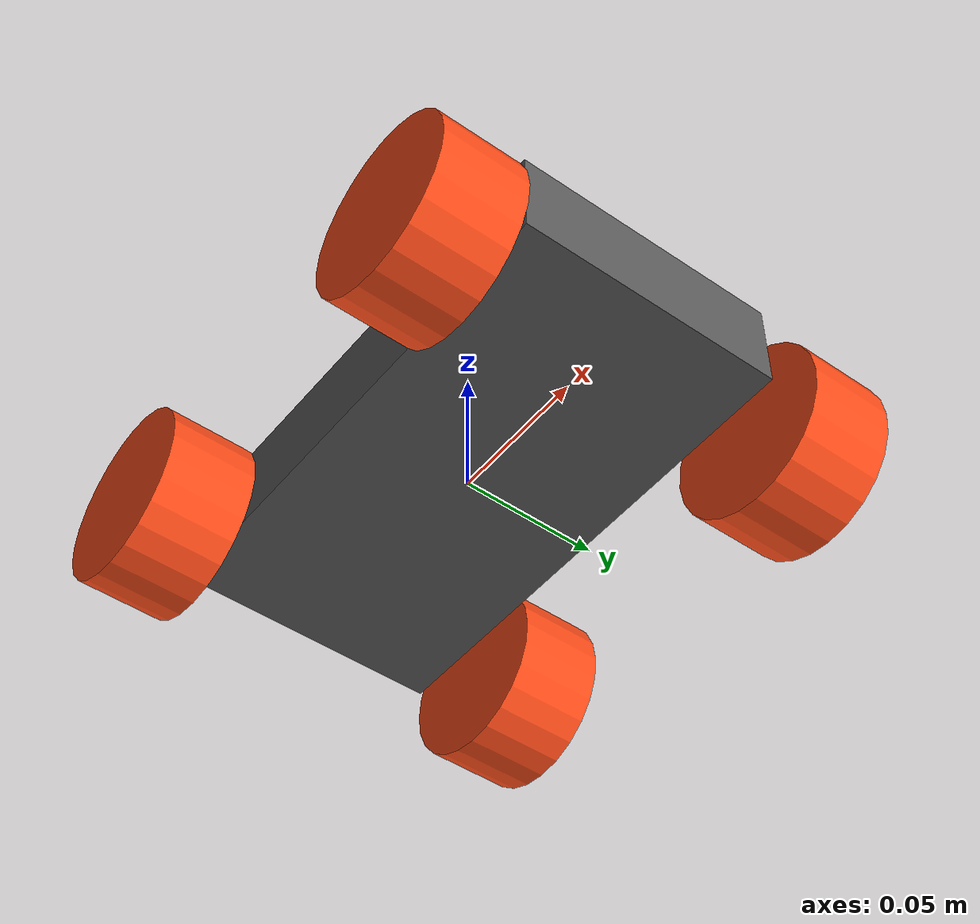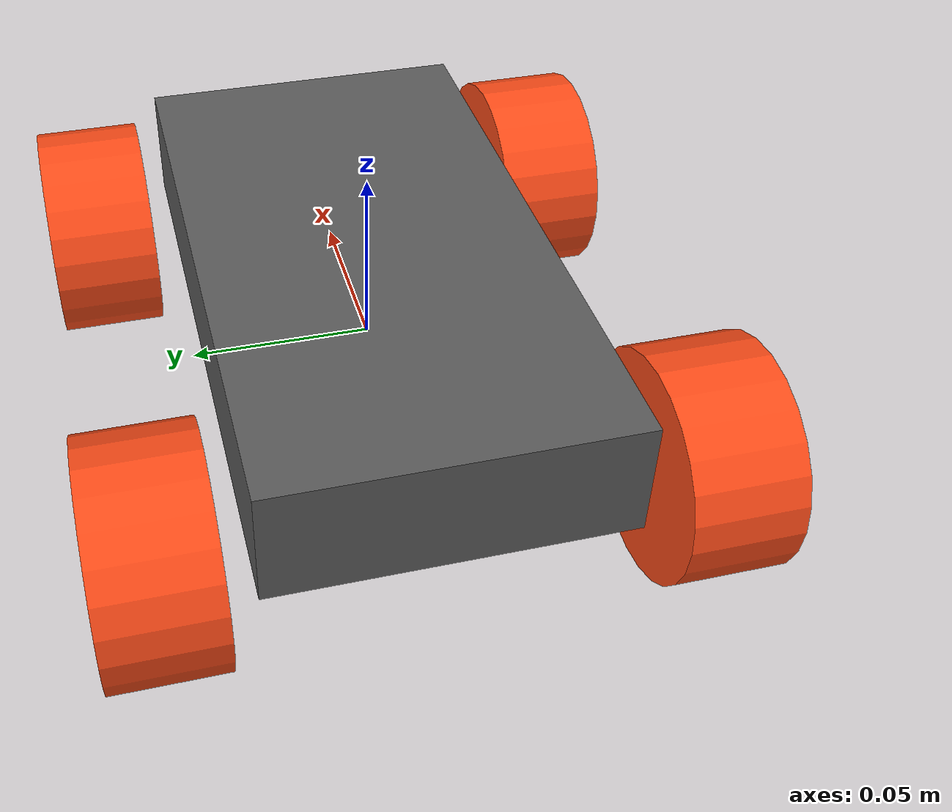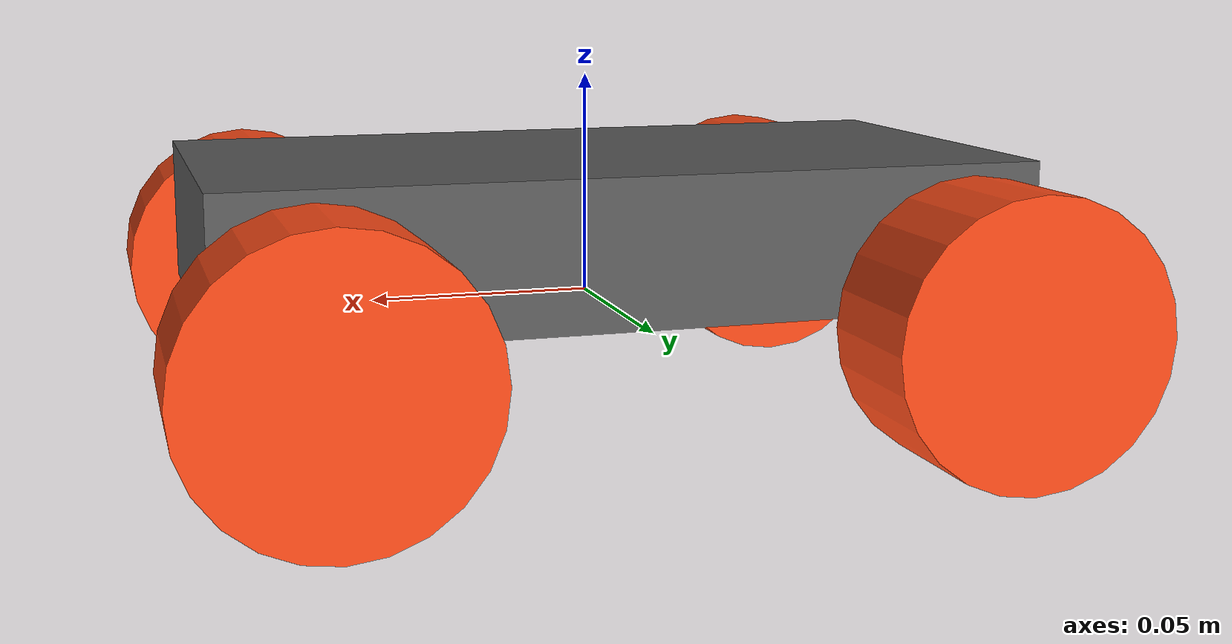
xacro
<?xml version="1.0"?>
<robot xmlns:xacro="http://www.ros.org/wiki/xacro"  name="robot">
    <xacro:include filename="inertial_macros.xacro"/>
    <material name="white">
        <color rgba="1 1 1 1"/>
    </material>
    <material name="orange">
        <color rgba="1 0.3 0.1 1"/>
    </material>
    <material name="blue">
        <color rgba="0.2 0.2 1 1"/>
    </material>
    <material name="black">
        <color rgba="0 0 0 1"/>
    </material>
    <material name="dimgray">
        <color rgba="0.36 0.36 0.36 1"/>
    </material>

    <!-- General mobile robotic applications the first link should be "base_link"
    Center point of the robot
    -->
    <link name="base_link">

    </link>

    <joint name="chassis joint" type="fixed">
        <parent link="base_link"/>
        <child link="chassis"/>
        <origin xyz="-0.09 0 0"/>
    </joint>

    <link name="chassis">
        <visual>
            <origin xyz="0.09 0 0.01625"/>
            <geometry>
                <box size="0.180 0.095 0.0325"/>
            </geometry>
            <material name="dimgray"/>
        </visual>
        <collision>
            <origin xyz="0.09 0 0.01625"/>
            <geometry>
                <box size="0.180 0.095 0.0325"/>
            </geometry>
        </collision>
        <xacro:inertial_box mass="0.4" x="0.180" y="0.095" z="0.0325">
            <origin xyz="0.09 0 0.01625" rpy="0 0 0"/>
        </xacro:inertial_box>

    </link>

    <!-- Left Rear Wheel LInk-->
    <joint name="left_rear_wheel_joint" type="continuous">
        <parent link= "base_link"/>
        <child link="left_rear_wheel"/>
        <origin xyz="-0.070 0.070 0" rpy="-${pi/2} 0 0"/>
        <axis xyz="0 0 1"/>
    </joint>
    <link name="left_rear_wheel">
        <visual>
            <geometry>
                <cylinder radius="0.031" length="0.03"/>
            </geometry>
            <material name="orange"/>
        </visual>
        <collision>
            <geometry>
                <cylinder radius="0.031" length="0.03"/>
            </geometry>
        </collision>
        <xacro:inertial_cylinder mass="0.1" radius="0.031" length="0.03">
            <origin xyz="0 0 0" rpy="0 0 0"/>
        </xacro:inertial_cylinder>
    </link>

    <!-- Right Rear Wheel LInk-->
    <joint name="right_rear_wheel_joint" type="continuous">
        <parent link= "base_link"/>
        <child link="right_rear_wheel"/>
        <origin xyz="-0.070 -0.070 0" rpy="${pi/2} 0 0"/>
        <axis xyz="0 0 -1"/>
    </joint>
    <link name="right_rear_wheel">
        <visual>
            <geometry>
                <cylinder radius="0.031" length="0.03"/>
            </geometry>
            <material name="orange"/>
        </visual>
        <collision>
            <geometry>
                <cylinder radius="0.031" length="0.03"/>
            </geometry>
        </collision>
        <xacro:inertial_cylinder mass="0.1" radius="0.031" length="0.03">
            <origin xyz="0 0 0" rpy="0 0 0"/>
        </xacro:inertial_cylinder>
    </link>

    <!-- Left Front Wheel LInk-->
    <joint name="left_front_wheel_joint" type="continuous">
        <parent link= "base_link"/>
        <child link="left_front_wheel"/>
        <origin xyz="0.070 0.070 0" rpy="-${pi/2} 0 0"/>
        <axis xyz="0 0 1"/>
    </joint>
    <link name="left_front_wheel">
        <visual>
            <geometry>
                <cylinder radius="0.031" length="0.03"/>
            </geometry>
            <material name="orange"/>
        </visual>
        <collision>
            <geometry>
                <cylinder radius="0.031" length="0.03"/>
            </geometry>
        </collision>
        <xacro:inertial_cylinder mass="0.1" radius="0.031" length="0.03">
            <origin xyz="0 0 0" rpy="0 0 0"/>
        </xacro:inertial_cylinder>
    </link>

    <!-- Right Front Wheel LInk-->
    <joint name="right_front_wheel_joint" type="continuous">
        <parent link= "base_link"/>
        <child link="right_front_wheel"/>
        <origin xyz="0.070 -0.070 0" rpy="${pi/2} 0 0"/>
        <axis xyz="0 0 -1"/>
    </joint>
    <link name="right_front_wheel">
        <visual>
            <geometry>
                <cylinder radius="0.031" length="0.03"/>
            </geometry>
            <material name="orange"/>
        </visual>
        <collision>
            <geometry>
                <cylinder radius="0.031" length="0.03"/>
            </geometry>
        </collision>
        <xacro:inertial_cylinder mass="0.1" radius="0.031" length="0.03">
            <origin xyz="0 0 0" rpy="0 0 0"/>
        </xacro:inertial_cylinder>
    </link>

</robot>
